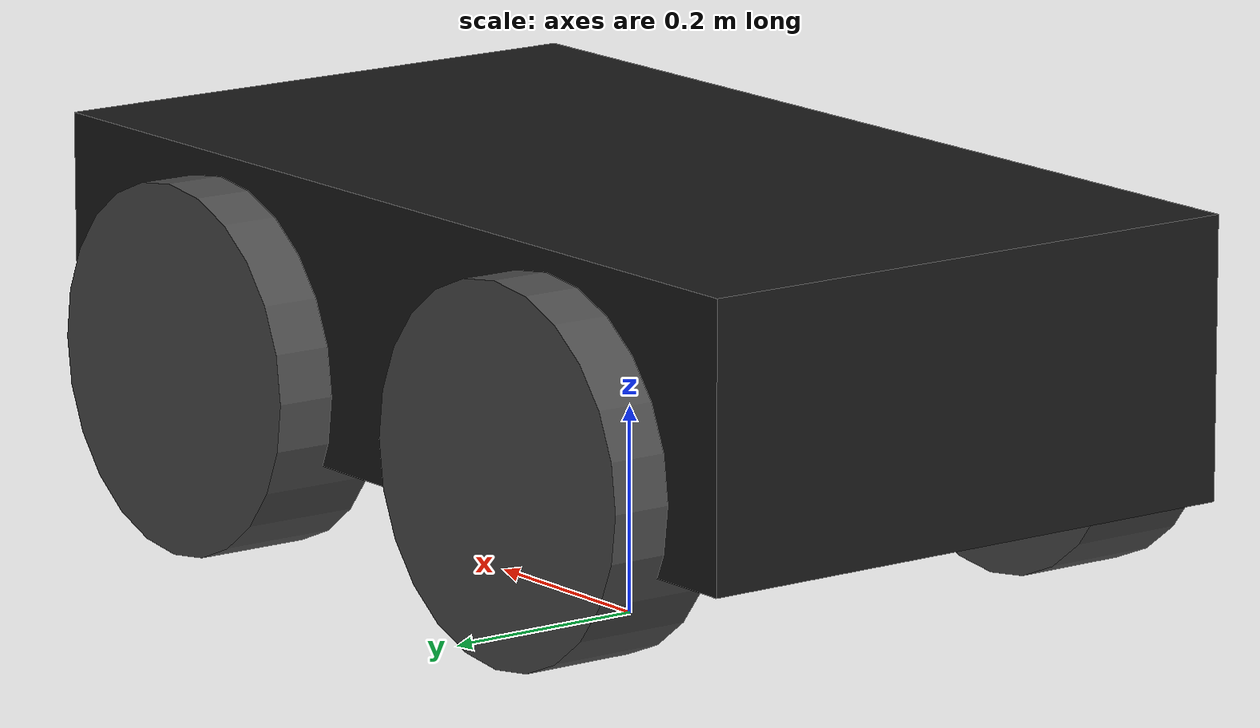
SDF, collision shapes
<?xml version="1.0" ?>
<sdf version="1.8">
  <model name="husky">
    <pose>0 0 0.2 0 0 0</pose>
    <!-- Main Chassis -->
    <link name="base_link">
      <!-- Physics -->
      <collision name="collision">
        <pose>0 0 0.1 0 0 0</pose>
        <geometry>
          <box>
            <size>1.0074 0.5709 0.2675</size>
          </box>
        </geometry>
      </collision>
      <inertial>
        <mass>33.855</mass>
        <pose>-0.0856132 -0.000839955 0.238145 0 0 0</pose>
        <inertia>
          <ixx>2.2343</ixx>
          <ixy>-0.023642</ixy>
          <ixz>0.275174</ixz>
          <iyy>3.42518</iyy>
          <iyz>0.00239624</iyz>
          <izz>2.1241</izz>
        </inertia>
      </inertial>
      <!-- Visual -->
      <!-- Base frame -->
      <visual name="base">
        <pose>0 0 0 0 0 0</pose>
        <geometry>
          <mesh>
            <uri>model://husky/meshes/base_link.stl</uri>
          </mesh>
        </geometry>
        <material>
          <ambient>0.1 0.1 0.1 1</ambient>
          <diffuse>0.1 0.1 0.1 1</diffuse>
        </material>
      </visual>
      <!-- Top Plate -->
      <visual name="top_plate">
        <pose>0 0 0 0 0 0</pose>
        <geometry>
          <mesh>
            <uri>model://husky/meshes/top_plate.stl</uri>
          </mesh>
        </geometry>
        <material>
          <ambient>0.8 0.8 0.0 1</ambient>
          <diffuse>0.8 0.8 0.0 1</diffuse>
        </material>
      </visual>
      <!-- Front Bumper -->
      <visual name="front_bumper">
        <pose>0.47 0 0.091 0 0 0</pose>
        <geometry>
          <mesh>
            <uri>model://husky/meshes/bumper.stl</uri>
          </mesh>
        </geometry>
        <material>
          <ambient>0.1 0.1 0.1 1</ambient>
          <diffuse>0.1 0.1 0.1 1</diffuse>
        </material>
      </visual>
      <!-- Rear Bumper -->
      <visual name="rear_bumper">
        <pose>-0.47 0 0.091 0 0 3.141</pose>
        <geometry>
          <mesh>
            <uri>model://husky/meshes/bumper.stl</uri>
          </mesh>
        </geometry>
        <material>
          <ambient>0.1 0.1 0.1 1</ambient>
          <diffuse>0.1 0.1 0.1 1</diffuse>
        </material>
      </visual>
      <!-- User Rail -->
      <visual name="user_rail">
        <pose>0.272 0 0.245 0 0 0</pose>
        <geometry>
          <mesh>
            <uri>model://husky/meshes/user_rail.stl</uri>
          </mesh>
        </geometry>
        <material>
          <ambient>0.5 0.5 0.5 1</ambient>
          <diffuse>0.5 0.5 0.5 1</diffuse>
        </material>
      </visual>
    </link>
    <!-- Back Left Wheel -->
    <link name="back_left_wheel">
      <pose>-0.256 0.285475 0.035 0 0 0</pose>
      <inertial>
        <mass>2.6357</mass>
        <pose>0 0 0 0 0 0</pose>
        <inertia>
          <ixx>0.0246688</ixx>
          <ixy>0</ixy>
          <ixz>0</ixz>
          <iyy>0.0246688</iyy>
          <iyz>0</iyz>
          <izz>0.0441058</izz>
        </inertia>
      </inertial>
      <collision name="back_left_wheel_collision">
        <pose>0 0 0 -1.5707 0 0</pose>
        <geometry>
          <cylinder>
            <radius>0.17775</radius>
            <length>0.1143</length>
          </cylinder>
        </geometry>
        <surface>
          <friction>
            <ode>
              <mu>100000.0</mu>
              <mu2>100000.0</mu2>
              <slip1>0.0</slip1>
              <slip2>0.0</slip2>
            </ode>
          </friction>
        </surface>
      </collision>
      <visual name="back_left_wheel">
        <pose>0 0 0 -3.14159 0 0</pose>
        <geometry>
          <mesh>
            <uri>model://husky/meshes/wheel.stl</uri>
          </mesh>
        </geometry>
        <material>
          <ambient>0.3 0.3 0.3 1</ambient>
          <diffuse>0.3 0.3 0.3 1</diffuse>
        </material>
      </visual>
    </link>
    <joint name="back_left_joint" type="revolute">
      <parent>base_link</parent>
      <child>back_left_wheel</child>
      <axis>
        <xyz>0 1 0</xyz>
        <limit>
          <lower>-1.79769e+308</lower>
          <upper>1.79769e+308</upper>
        </limit>
      </axis>
    </joint>
    <!-- Back Right Wheel -->
    <link name="back_right_wheel">
      <pose>-0.256 -0.285475 0.035 0 0 0</pose>
      <inertial>
        <mass>2.6357</mass>
        <pose>0 0 0 0 0 0</pose>
        <inertia>
          <ixx>0.0246688</ixx>
          <ixy>0</ixy>
          <ixz>0</ixz>
          <iyy>0.0246688</iyy>
          <iyz>0</iyz>
          <izz>0.0441058</izz>
        </inertia>
      </inertial>
      <collision name="back_right_wheel_collision">
        <pose>0 0 0 -1.5707 0 0</pose>
        <geometry>
          <cylinder>
            <radius>0.17775</radius>
            <length>0.1143</length>
          </cylinder>
        </geometry>
        <surface>
          <friction>
            <ode>
              <mu>100000.0</mu>
              <mu2>100000.0</mu2>
              <slip1>0.0</slip1>
              <slip2>0.0</slip2>
            </ode>
          </friction>
        </surface>
      </collision>
      <visual name="back_right_wheel">
        <pose>0 0 0 -3.14159 0 0</pose>
        <geometry>
          <mesh>
            <uri>model://husky/meshes/wheel.stl</uri>
          </mesh>
        </geometry>
        <material>
          <ambient>0.3 0.3 0.3 1</ambient>
          <diffuse>0.3 0.3 0.3 1</diffuse>
        </material>
      </visual>
    </link>
    <joint name="back_right_joint" type="revolute">
      <parent>base_link</parent>
      <child>back_right_wheel</child>
      <axis>
        <xyz>0 1 0</xyz>
        <limit>
          <lower>-1.79769e+308</lower>
          <upper>1.79769e+308</upper>
        </limit>
      </axis>
    </joint>
    <!-- Front Left Wheel -->
    <link name="front_left_wheel">
      <pose>0.256 0.285475 0.035 0 0 0</pose>
      <inertial>
        <mass>2.6357</mass>
        <pose>0 0 0 0 0 0</pose>
        <inertia>
          <ixx>0.0246688</ixx>
          <ixy>0</ixy>
          <ixz>0</ixz>
          <iyy>0.0246688</iyy>
          <iyz>0</iyz>
          <izz>0.0441058</izz>
        </inertia>
      </inertial>
      <collision name="front_left_wheel_collision">
        <pose>0 0 0 -1.5707 0 0</pose>
        <geometry>
          <cylinder>
            <radius>0.17775</radius>
            <length>0.1143</length>
          </cylinder>
        </geometry>
        <surface>
          <friction>
            <ode>
              <mu>100000.0</mu>
              <mu2>100000.0</mu2>
              <slip1>0.0</slip1>
              <slip2>0.0</slip2>
            </ode>
          </friction>
        </surface>
      </collision>
      <visual name="front_left_wheel">
        <pose>0 0 0 -3.14159 0 0</pose>
        <geometry>
          <mesh>
            <uri>model://husky/meshes/wheel.stl</uri>
          </mesh>
        </geometry>
        <material>
          <ambient>0.3 0.3 0.3 1</ambient>
          <diffuse>0.3 0.3 0.3 1</diffuse>
        </material>
      </visual>
    </link>
    <joint name="front_left_joint" type="revolute">
      <parent>base_link</parent>
      <child>front_left_wheel</child>
      <axis>
        <xyz>0 1 0</xyz>
        <limit>
          <lower>-1.79769e+308</lower>
          <upper>1.79769e+308</upper>
        </limit>
      </axis>
    </joint>
    <!-- Front Right Wheel -->
    <link name="front_right_wheel">
      <pose>0.256 -0.285475 0.035 0 0 0</pose>
      <inertial>
        <mass>2.6357</mass>
        <pose>0 0 0 0 0 0</pose>
        <inertia>
          <ixx>0.0246688</ixx>
          <ixy>0</ixy>
          <ixz>0</ixz>
          <iyy>0.0246688</iyy>
          <iyz>0</iyz>
          <izz>0.0441058</izz>
        </inertia>
      </inertial>
      <collision name="front_right_wheel_collision">
        <pose>0 0 0 -1.5707 0 0</pose>
        <geometry>
          <cylinder>
            <radius>0.17775</radius>
            <length>0.1143</length>
          </cylinder>
        </geometry>
        <surface>
          <friction>
            <ode>
              <mu>100000.0</mu>
              <mu2>100000.0</mu2>
              <slip1>0.0</slip1>
              <slip2>0.0</slip2>
            </ode>
          </friction>
        </surface>
      </collision>
      <visual name="front_right_wheel">
        <pose>0 0 0 -3.14159 0 0</pose>
        <geometry>
          <mesh>
            <uri>model://husky/meshes/wheel.stl</uri>
          </mesh>
        </geometry>
        <material>
          <ambient>0.3 0.3 0.3 1</ambient>
          <diffuse>0.3 0.3 0.3 1</diffuse>
        </material>
      </visual>
    </link>
    <joint name="front_right_joint" type="revolute">
      <parent>base_link</parent>
      <child>front_right_wheel</child>
      <axis>
        <xyz>0 1 0</xyz>
        <limit>
          <lower>-1.79769e+308</lower>
          <upper>1.79769e+308</upper>
        </limit>
      </axis>
    </joint>

    <!-- Diff drive plugin for gz-sim (skid-steer via 4-wheel diff drive) -->
    <plugin filename="gz-sim-diff-drive-system" name="gz::sim::systems::DiffDrive">
      <left_joint>front_left_joint</left_joint>
      <left_joint>back_left_joint</left_joint>
      <right_joint>front_right_joint</right_joint>
      <right_joint>back_right_joint</right_joint>
      <wheel_separation>0.5709</wheel_separation>
      <wheel_radius>0.17775</wheel_radius>
      <max_linear_acceleration>1.0</max_linear_acceleration>
      <topic>cmd_vel</topic>
      <odom_topic>odom</odom_topic>
      <frame_id>odom</frame_id>
      <child_frame_id>base_link</child_frame_id>
      <odom_publisher_frequency>30</odom_publisher_frequency>
      <tf_topic>/tf</tf_topic>
    </plugin>

    <plugin filename="gz-sim-joint-state-publisher-system" name="gz::sim::systems::JointStatePublisher">
      <topic>joint_states</topic>
      <joint_name>front_left_joint</joint_name>
      <joint_name>front_right_joint</joint_name>
      <joint_name>back_left_joint</joint_name>
      <joint_name>back_right_joint</joint_name>
    </plugin>

  </model>
</sdf>
